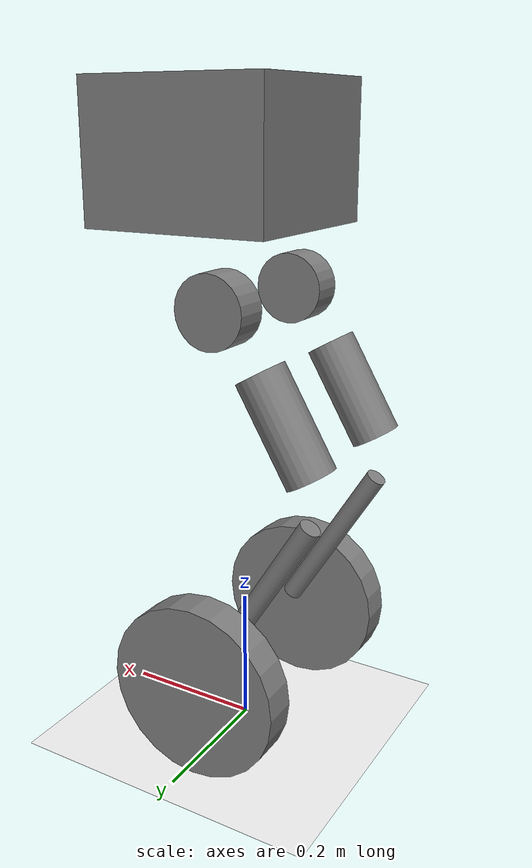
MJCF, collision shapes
<mujoco model="WF_TRON1A flat terrain scene">
  <include file="wf_tron1a.xml"/>

  <statistic center="0 0 0.5" extent="1.5" meansize="0.05"/>

  <visual>
    <headlight diffuse=".8 .8 .8" ambient=".2 .2 .2" specular="1 1 1"/>
    <rgba force="1 0 0 1"/>
    <global azimuth="-160" elevation="-20"/>
    <map force="0.01"/>
    <scale forcewidth="0.3" contactwidth="0.5" contactheight="0.2"/>
    <quality shadowsize="8192"/>
  </visual>

  <asset>
    <texture type="skybox" builtin="gradient" rgb1="1 1 1" rgb2="1 1 1" width="800" height="800"/>
    <texture type="2d" name="groundplane" builtin="checker" mark="edge" rgb1="1 1 1" rgb2="1 1 1"
             markrgb="0 0 0" width="300" height="300"/>
    <material name="groundplane" texture="groundplane" texuniform="true" texrepeat="5 5" reflectance="0"/>
  </asset>

  <worldbody>
    <geom name="floor" size="0 0 0.01" type="plane" material="groundplane" priority="1"
          friction="0.8" contype="1" conaffinity="2" condim="4"/>
  </worldbody>

  <include file="sensor.xml"/>

  <keyframe>
    <key name="home"
      qpos="
        0 0 0.907
        1 0 0 0
        0.0 0.0 0.0 0.0
        0.0 0.0 0.0 0.0
      "
      ctrl="0 0 0 0 0 0 0 0"/>
  </keyframe>
</mujoco>

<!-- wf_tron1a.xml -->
<mujoco model="WF_TRON1A">
  <compiler angle="radian" autolimits="true"/>

  <option iterations="3" ls_iterations="5" timestep=".002" integrator="Euler">
    <flag eulerdamp="disable"/>
  </option>

  <asset>
    <material name="body_gray" rgba="0.79216 0.81961 0.93333 1"/>
    <material name="white" rgba="1 1 1 1"/>
    <material name="wheel_dark" rgba="0.26667 0.26667 0.26667 1"/>

    <mesh name="base_Link" file="assets/base_Link.STL"/>
    <mesh name="abad_L_Link" file="assets/abad_L_Link.STL"/>
    <mesh name="hip_L_Link" file="assets/hip_L_Link.STL"/>
    <mesh name="knee_L_Link" file="assets/knee_L_Link.STL"/>
    <mesh name="wheel_L_Link" file="assets/wheel_L_Link.STL"/>
    <mesh name="abad_R_Link" file="assets/abad_R_Link.STL"/>
    <mesh name="hip_R_Link" file="assets/hip_R_Link.STL"/>
    <mesh name="knee_R_Link" file="assets/knee_R_Link.STL"/>
    <mesh name="wheel_R_Link" file="assets/wheel_R_Link.STL"/>
  </asset>

  <default>
    <default class="wf_tron1a">
      <geom condim="1" contype="0" conaffinity="0"/>
      <site rgba="1 0 0 1" size="0.01" group="5"/>
      <default class="visual">
        <geom type="mesh" contype="0" conaffinity="0" group="2"/>
      </default>
      <default class="collision">
        <geom group="3"/>
        <default class="wheel_contact">
          <geom contype="2" conaffinity="1" type="cylinder" condim="4"
                friction="0.8 0.005 0.0001"/>
        </default>
      </default>

      <joint frictionloss="0.05" armature="0.01"/>

      <default class="abad">
        <joint axis="1 0 0" actuatorfrcrange="-80 80" damping="1"/>
      </default>
      <default class="hip">
        <joint axis="0 1 0" actuatorfrcrange="-80 80" damping="1"/>
      </default>
      <default class="knee">
        <joint axis="0 1 0" actuatorfrcrange="-80 80" damping="1"/>
      </default>
      <default class="wheel">
        <joint axis="0 1 0" actuatorfrcrange="-40 40" damping="0.05" frictionloss="0.01"/>
      </default>
    </default>
  </default>

  <worldbody>
    <light name="spotlight" mode="targetbodycom" target="base_Link" pos="0 -2 4" exponent="20"/>
    <body name="base_Link" pos="0 0 0.92" childclass="wf_tron1a">
      <freejoint/>
      <inertial pos="0.0457123 0.000139854 -0.163809" quat="0.972578 -0.00615364 -0.232461 0.00398682"
                mass="9.595" diaginertia="0.154712 0.11093 0.0846371"/>
      <site name="imu" pos="0 0 0"/>
      <camera name="track" pos="1.5 -1.2 0.8" xyaxes="0.628 0.779 0 -0.274 0.221 0.936" mode="trackcom"/>
      <geom class="visual" material="body_gray" mesh="base_Link"/>
      <geom class="collision" name="base_collision" size="0.135 0.13 0.095" pos="0.03 0 -0.072" type="box"/>

      <!-- Left Leg -->
      <body name="abad_L_Link" pos="0.05556 0.105 -0.2602">
        <inertial pos="-0.06977 0.04479 0.00057" quat="0.595024 0.579772 0.394141 0.393019"
                  mass="1.469" diaginertia="0.00252289 0.00208104 0.00139163"/>
        <joint name="abad_L_Joint" class="abad" range="-0.38397 1.39626"/>
        <geom class="visual" material="body_gray" mesh="abad_L_Link"/>
        <geom class="collision" name="abad_L_collision" type="cylinder" pos="-0.08 0 0"
              euler="1.57 0 0" size="0.05 0.025"/>

        <body name="hip_L_Link" pos="-0.077 0.0205 0">
          <inertial pos="-0.02869 -0.0477 -0.03992" quat="0.853885 0.192797 0.226903 0.426877"
                    mass="2.3" diaginertia="0.0233264 0.0230229 0.00277548"/>
          <joint name="hip_L_Joint" class="hip" range="-1.01229 1.39626"/>
          <geom class="visual" material="white" mesh="hip_L_Link"/>
          <geom class="collision" name="hip_L_collision" type="cylinder" pos="-0.1 -0.025 -0.14"
                euler="0 0.53 0" size="0.035 0.075"/>

          <body name="knee_L_Link" pos="-0.15 -0.0205 -0.25981">
            <inertial pos="0.11913 0.01106 -0.20363" quat="0.687012 -0.159981 -0.201582 0.679548"
                      mass="1.49" diaginertia="0.0177107 0.0171855 0.001015"/>
            <joint name="knee_L_Joint" class="knee" axis="0 -1 0" range="-0.872665 1.36136"/>
            <geom class="visual" material="body_gray" mesh="knee_L_Link"/>
            <geom class="collision" name="knee_L_collision" type="cylinder" pos="0.078 0 -0.12"
                  euler="0 -0.55 0" size="0.015 0.13"/>

            <body name="wheel_L_Link" pos="0.15 0.0435 -0.25981">
              <inertial pos="3e-05 0.00807 -2e-05" quat="0.683013 0.183016 0.183017 0.683011"
                        mass="1.08" diaginertia="0.00974272 0.00515568 0.00515344"/>
              <joint name="wheel_L_Joint" class="wheel" limited="false"/>
              <geom class="visual" material="wheel_dark" mesh="wheel_L_Link"/>
              <geom class="wheel_contact" name="wheel_L_contact" pos="0.0 0.008 0.0"
                    size="0.127 0.025" quat="0.707107 0.707107 0 0"/>
              <site name="wheel_L" pos="0 0.008 0"/>
            </body>
          </body>
        </body>
      </body>

      <!-- Right Leg -->
      <body name="abad_R_Link" pos="0.05556 -0.105 -0.2602">
        <inertial pos="-0.06977 -0.04479 0.00057" quat="0.393019 0.394141 0.579772 0.595024"
                  mass="1.469" diaginertia="0.00252289 0.00208104 0.00139163"/>
        <joint name="abad_R_Joint" class="abad" range="-1.39626 0.38397"/>
        <geom class="visual" material="body_gray" mesh="abad_R_Link"/>
        <geom class="collision" name="abad_R_collision" type="cylinder" pos="-0.08 0 0"
              euler="1.57 0 0" size="0.05 0.025"/>

        <body name="hip_R_Link" pos="-0.077 -0.0205 0">
          <inertial pos="-0.02869 0.0477 -0.03992" quat="0.426877 0.226903 0.192797 0.853885"
                    mass="2.3" diaginertia="0.0233264 0.0230229 0.00277548"/>
          <joint name="hip_R_Joint" class="hip" axis="0 -1 0" range="-1.39626 1.01229"/>
          <geom class="visual" material="white" mesh="hip_R_Link"/>
          <geom class="collision" name="hip_R_collision" type="cylinder" pos="-0.10 0.025 -0.14"
                euler="0 0.53 0" size="0.035 0.075"/>

          <body name="knee_R_Link" pos="-0.15 0.0205 -0.25981">
            <inertial pos="0.11913 -0.01106 -0.20363" quat="0.679548 -0.201582 -0.159981 0.687012"
                      mass="1.49" diaginertia="0.0177107 0.0171855 0.001015"/>
            <joint name="knee_R_Joint" class="knee" range="-1.36136 0.872665"/>
            <geom class="visual" material="body_gray" mesh="knee_R_Link"/>
            <geom class="collision" name="knee_R_collision" type="cylinder" pos="0.078 0 -0.12"
                  euler="0 -0.55 0" size="0.015 0.13"/>

            <body name="wheel_R_Link" pos="0.15 -0.0435 -0.25981">
              <inertial pos="3e-05 -0.00807 -2e-05" quat="0.683011 0.183017 0.183016 0.683013"
                        mass="1.08" diaginertia="0.00974272 0.00515568 0.00515344"/>
              <joint name="wheel_R_Joint" class="wheel" limited="false"/>
              <geom class="visual" material="wheel_dark" mesh="wheel_R_Link"/>
              <geom class="wheel_contact" name="wheel_R_contact" pos="0.0 -0.008 0.0"
                    size="0.127 0.025" quat="0.707107 0.707107 0 0"/>
              <site name="wheel_R" pos="0 -0.008 0"/>
            </body>
          </body>
        </body>
      </body>
    </body>
  </worldbody>

  <sensor>
    <gyro site="imu" name="gyro"/>
    <velocimeter site="imu" name="local_linvel"/>
    <accelerometer site="imu" name="accelerometer"/>
    <framezaxis objtype="site" objname="imu" name="upvector"/>
    <framelinvel objtype="site" objname="imu" name="global_linvel"/>
    <frameangvel objtype="site" objname="imu" name="global_angvel"/>
    <framepos objtype="site" objname="imu" name="position"/>
    <framequat objtype="site" objname="imu" name="orientation"/>
    <framelinvel objtype="site" objname="wheel_L" name="wheel_L_global_linvel"/>
    <framelinvel objtype="site" objname="wheel_R" name="wheel_R_global_linvel"/>
  </sensor>

  <actuator>
    <motor name="abad_L_Joint" gear="1" joint="abad_L_Joint" ctrllimited="true" ctrlrange="-80 80"/>
    <motor name="hip_L_Joint" gear="1" joint="hip_L_Joint" ctrllimited="true" ctrlrange="-80 80"/>
    <motor name="knee_L_Joint" gear="1" joint="knee_L_Joint" ctrllimited="true" ctrlrange="-80 80"/>
    <motor name="wheel_L_Joint" gear="1" joint="wheel_L_Joint" ctrllimited="true" ctrlrange="-40 40"/>
    <motor name="abad_R_Joint" gear="1" joint="abad_R_Joint" ctrllimited="true" ctrlrange="-80 80"/>
    <motor name="hip_R_Joint" gear="1" joint="hip_R_Joint" ctrllimited="true" ctrlrange="-80 80"/>
    <motor name="knee_R_Joint" gear="1" joint="knee_R_Joint" ctrllimited="true" ctrlrange="-80 80"/>
    <motor name="wheel_R_Joint" gear="1" joint="wheel_R_Joint" ctrllimited="true" ctrlrange="-40 40"/>
  </actuator>
</mujoco>

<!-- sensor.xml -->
<mujoco>
  <sensor>
    <contact name="wheel_L_floor_found" geom1="wheel_L_contact" geom2="floor" num="1" reduce="mindist" data="found"/>
    <contact name="wheel_R_floor_found" geom1="wheel_R_contact" geom2="floor" num="1" reduce="mindist" data="found"/>
  </sensor>
</mujoco>
